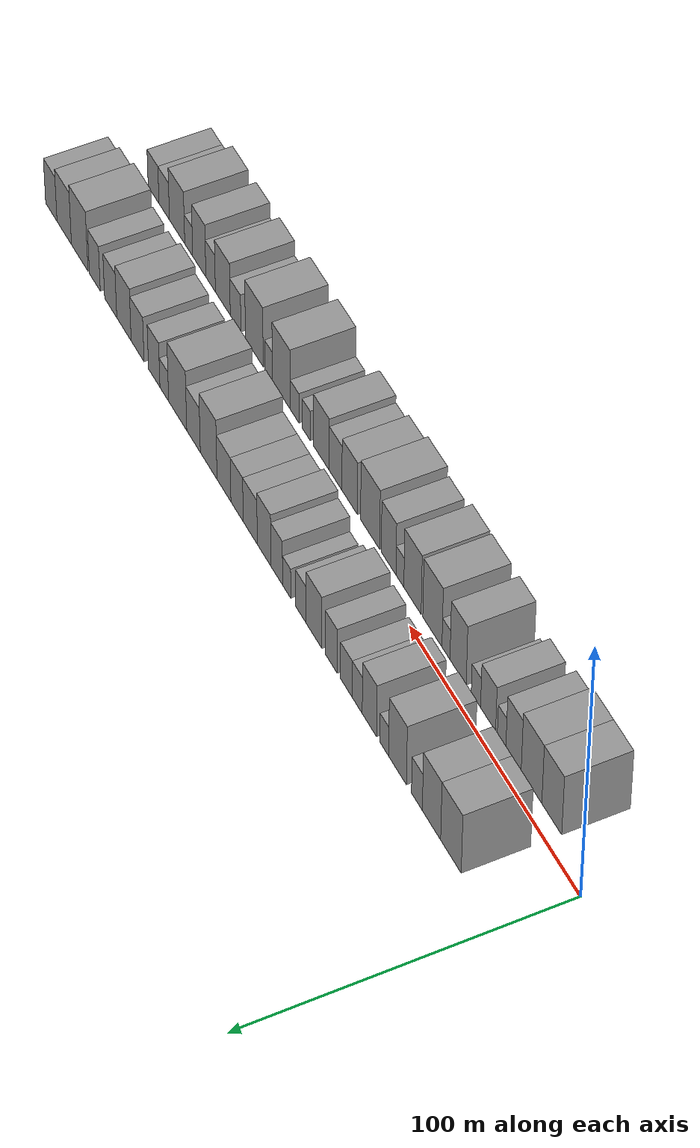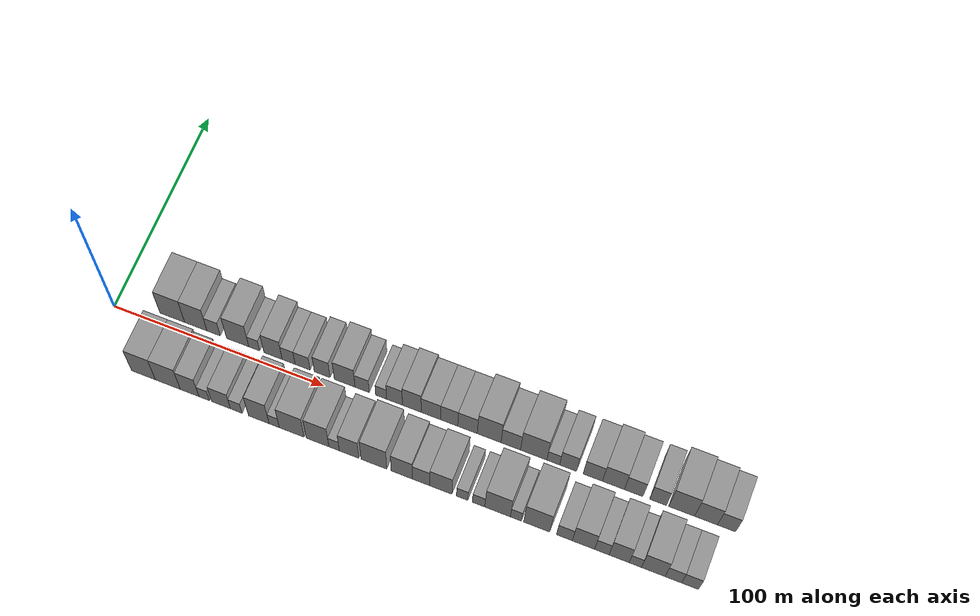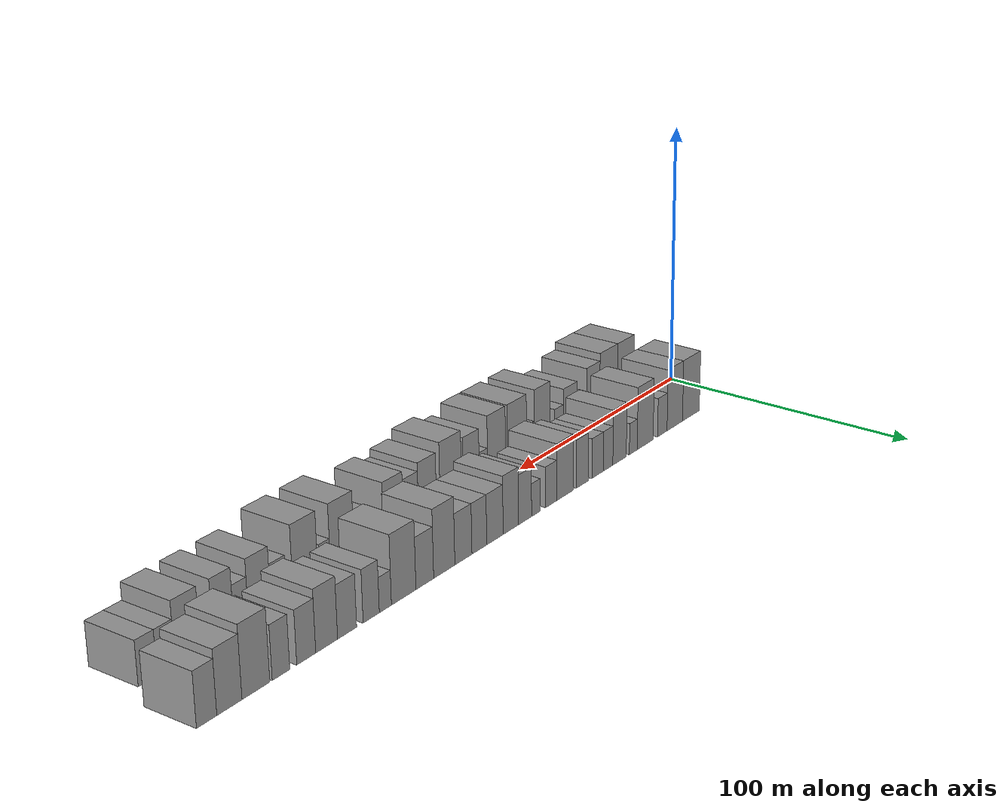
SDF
<sdf version="1.6">
 <world name="default">
  <scene>
   <sky><clouds><speed>12</speed></clouds></sky>
   <ambient>0.4 0.4 0.4 1</ambient>
   <background>0.7 0.7 0.7 1</background>
   <shadows>1</shadows>
  </scene>
  <gravity>0 0 -9.8066</gravity>
  <magnetic_field>6e-06 2.3e-05 -4.2e-05</magnetic_field>
  <physics default="0" name="default_physics" type="ode">
   <ode>
    <solver>
     <type>quick</type>
     <iters>10</iters>
     <sor>1.0</sor>
     <use_dynamic_moi_rescaling>0</use_dynamic_moi_rescaling>
    </solver>
    <constraints>
     <cfm>0</cfm>
     <erp>0.2</erp>
     <contact_max_correcting_vel>100</contact_max_correcting_vel>
     <contact_surface_layer>0.001</contact_surface_layer>
    </constraints>
   </ode>
   <max_step_size>0.004</max_step_size>
   <real_time_factor>1</real_time_factor>
   <real_time_update_rate>250</real_time_update_rate>
  </physics>
  <light name="sun" type="directional">
   <pose>0 0 10 0 0 0</pose>
   <diffuse>0.8 0.8 0.8 1</diffuse>
   <specular>0.2 0.2 0.2 1</specular>
   <attenuation>
    <range>1000</range>
    <constant>0.9</constant>
    <linear>0.01</linear>
    <quadratic>0.001</quadratic>
   </attenuation>
   <direction>-0.5 0.1 -0.9</direction>
  </light>
  <model name="building_1">
   <static>1</static>
   <pose>25.9721 14.5000 0 0.000000 0.000000 1.570796</pose>
   <link name="link">
    <pose>0 0 12.00 0 0 0</pose>
    <collision name="collision"><geometry><box><size>20.0000 11.9441 24.0000</size></box></geometry></collision>
    <visual name="visual">
     <cast_shadows>0</cast_shadows>
     <geometry><box><size>20.0000 11.9441 24.0000</size></box></geometry>
     <material>
      <script>
       <uri>model://grey_wall/materials/scripts</uri>
       <uri>model://grey_wall/materials/textures</uri>
       <name>vrc/grey_wall</name>
      </script>
     </material>
    </visual>
   </link>
  </model>
  <model name="building_2">
   <static>1</static>
   <pose>37.3020 14.5000 0 0.000000 0.000000 1.570796</pose>
   <link name="link">
    <pose>0 0 12.00 0 0 0</pose>
    <collision name="collision"><geometry><box><size>20.0000 10.7158 24.0000</size></box></geometry></collision>
    <visual name="visual">
     <cast_shadows>0</cast_shadows>
     <geometry><box><size>20.0000 10.7158 24.0000</size></box></geometry>
     <material>
      <script>
       <uri>model://grey_wall/materials/scripts</uri>
       <uri>model://grey_wall/materials/textures</uri>
       <name>vrc/grey_wall</name>
      </script>
     </material>
    </visual>
   </link>
  </model>
  <model name="building_3">
   <static>1</static>
   <pose>45.8694 14.5000 0 0.000000 0.000000 1.570796</pose>
   <link name="link">
    <pose>0 0 7.50 0 0 0</pose>
    <collision name="collision"><geometry><box><size>20.0000 6.4189 15.0000</size></box></geometry></collision>
    <visual name="visual">
     <cast_shadows>0</cast_shadows>
     <geometry><box><size>20.0000 6.4189 15.0000</size></box></geometry>
     <material>
      <script>
       <uri>model://grey_wall/materials/scripts</uri>
       <uri>model://grey_wall/materials/textures</uri>
       <name>vrc/grey_wall</name>
      </script>
     </material>
    </visual>
   </link>
  </model>
  <model name="building_4">
   <static>1</static>
   <pose>57.3771 14.5000 0 0.000000 0.000000 1.570796</pose>
   <link name="link">
    <pose>0 0 12.00 0 0 0</pose>
    <collision name="collision"><geometry><box><size>20.0000 10.5964 24.0000</size></box></geometry></collision>
    <visual name="visual">
     <cast_shadows>0</cast_shadows>
     <geometry><box><size>20.0000 10.5964 24.0000</size></box></geometry>
     <material>
      <script>
       <uri>model://grey_wall/materials/scripts</uri>
       <uri>model://grey_wall/materials/textures</uri>
       <name>vrc/grey_wall</name>
      </script>
     </material>
    </visual>
   </link>
  </model>
  <model name="building_5">
   <static>1</static>
   <pose>65.2735 14.5000 0 0.000000 0.000000 1.570796</pose>
   <link name="link">
    <pose>0 0 6.00 0 0 0</pose>
    <collision name="collision"><geometry><box><size>20.0000 5.1965 12.0000</size></box></geometry></collision>
    <visual name="visual">
     <cast_shadows>0</cast_shadows>
     <geometry><box><size>20.0000 5.1965 12.0000</size></box></geometry>
     <material>
      <script>
       <uri>model://grey_wall/materials/scripts</uri>
       <uri>model://grey_wall/materials/textures</uri>
       <name>vrc/grey_wall</name>
      </script>
     </material>
    </visual>
   </link>
  </model>
  <model name="building_6">
   <static>1</static>
   <pose>74.1986 14.5000 0 0.000000 0.000000 1.570796</pose>
   <link name="link">
    <pose>0 0 10.50 0 0 0</pose>
    <collision name="collision"><geometry><box><size>20.0000 8.6536 21.0000</size></box></geometry></collision>
    <visual name="visual">
     <cast_shadows>0</cast_shadows>
     <geometry><box><size>20.0000 8.6536 21.0000</size></box></geometry>
     <material>
      <script>
       <uri>model://grey_wall/materials/scripts</uri>
       <uri>model://grey_wall/materials/textures</uri>
       <name>vrc/grey_wall</name>
      </script>
     </material>
    </visual>
   </link>
  </model>
  <model name="building_7">
   <static>1</static>
   <pose>81.5979 14.5000 0 0.000000 0.000000 1.570796</pose>
   <link name="link">
    <pose>0 0 7.50 0 0 0</pose>
    <collision name="collision"><geometry><box><size>20.0000 6.1451 15.0000</size></box></geometry></collision>
    <visual name="visual">
     <cast_shadows>0</cast_shadows>
     <geometry><box><size>20.0000 6.1451 15.0000</size></box></geometry>
     <material>
      <script>
       <uri>model://grey_wall/materials/scripts</uri>
       <uri>model://grey_wall/materials/textures</uri>
       <name>vrc/grey_wall</name>
      </script>
     </material>
    </visual>
   </link>
  </model>
  <model name="building_8">
   <static>1</static>
   <pose>88.2021 14.5000 0 0.000000 0.000000 1.570796</pose>
   <link name="link">
    <pose>0 0 7.50 0 0 0</pose>
    <collision name="collision"><geometry><box><size>20.0000 7.0633 15.0000</size></box></geometry></collision>
    <visual name="visual">
     <cast_shadows>0</cast_shadows>
     <geometry><box><size>20.0000 7.0633 15.0000</size></box></geometry>
     <material>
      <script>
       <uri>model://grey_wall/materials/scripts</uri>
       <uri>model://grey_wall/materials/textures</uri>
       <name>vrc/grey_wall</name>
      </script>
     </material>
    </visual>
   </link>
  </model>
  <model name="building_9">
   <static>1</static>
   <pose>97.4439 14.5000 0 0.000000 0.000000 1.570796</pose>
   <link name="link">
    <pose>0 0 9.00 0 0 0</pose>
    <collision name="collision"><geometry><box><size>20.0000 7.4204 18.0000</size></box></geometry></collision>
    <visual name="visual">
     <cast_shadows>0</cast_shadows>
     <geometry><box><size>20.0000 7.4204 18.0000</size></box></geometry>
     <material>
      <script>
       <uri>model://grey_wall/materials/scripts</uri>
       <uri>model://grey_wall/materials/textures</uri>
       <name>vrc/grey_wall</name>
      </script>
     </material>
    </visual>
   </link>
  </model>
  <model name="building_10">
   <static>1</static>
   <pose>107.9999 14.5000 0 0.000000 0.000000 1.570796</pose>
   <link name="link">
    <pose>0 0 10.50 0 0 0</pose>
    <collision name="collision"><geometry><box><size>20.0000 9.6916 21.0000</size></box></geometry></collision>
    <visual name="visual">
     <cast_shadows>0</cast_shadows>
     <geometry><box><size>20.0000 9.6916 21.0000</size></box></geometry>
     <material>
      <script>
       <uri>model://grey_wall/materials/scripts</uri>
       <uri>model://grey_wall/materials/textures</uri>
       <name>vrc/grey_wall</name>
      </script>
     </material>
    </visual>
   </link>
  </model>
  <model name="building_11">
   <static>1</static>
   <pose>116.1699 14.5000 0 0.000000 0.000000 1.570796</pose>
   <link name="link">
    <pose>0 0 7.50 0 0 0</pose>
    <collision name="collision"><geometry><box><size>20.0000 6.6484 15.0000</size></box></geometry></collision>
    <visual name="visual">
     <cast_shadows>0</cast_shadows>
     <geometry><box><size>20.0000 6.6484 15.0000</size></box></geometry>
     <material>
      <script>
       <uri>model://grey_wall/materials/scripts</uri>
       <uri>model://grey_wall/materials/textures</uri>
       <name>vrc/grey_wall</name>
      </script>
     </material>
    </visual>
   </link>
  </model>
  <model name="building_12">
   <static>1</static>
   <pose>125.0549 14.5000 0 0.000000 0.000000 1.570796</pose>
   <link name="link">
    <pose>0 0 6.00 0 0 0</pose>
    <collision name="collision"><geometry><box><size>20.0000 5.1216 12.0000</size></box></geometry></collision>
    <visual name="visual">
     <cast_shadows>0</cast_shadows>
     <geometry><box><size>20.0000 5.1216 12.0000</size></box></geometry>
     <material>
      <script>
       <uri>model://grey_wall/materials/scripts</uri>
       <uri>model://grey_wall/materials/textures</uri>
       <name>vrc/grey_wall</name>
      </script>
     </material>
    </visual>
   </link>
  </model>
  <model name="building_13">
   <static>1</static>
   <pose>131.2912 14.5000 0 0.000000 0.000000 1.570796</pose>
   <link name="link">
    <pose>0 0 9.00 0 0 0</pose>
    <collision name="collision"><geometry><box><size>20.0000 7.3509 18.0000</size></box></geometry></collision>
    <visual name="visual">
     <cast_shadows>0</cast_shadows>
     <geometry><box><size>20.0000 7.3509 18.0000</size></box></geometry>
     <material>
      <script>
       <uri>model://grey_wall/materials/scripts</uri>
       <uri>model://grey_wall/materials/textures</uri>
       <name>vrc/grey_wall</name>
      </script>
     </material>
    </visual>
   </link>
  </model>
  <model name="building_14">
   <static>1</static>
   <pose>139.2761 14.5000 0 0.000000 0.000000 1.570796</pose>
   <link name="link">
    <pose>0 0 10.50 0 0 0</pose>
    <collision name="collision"><geometry><box><size>20.0000 8.6189 21.0000</size></box></geometry></collision>
    <visual name="visual">
     <cast_shadows>0</cast_shadows>
     <geometry><box><size>20.0000 8.6189 21.0000</size></box></geometry>
     <material>
      <script>
       <uri>model://grey_wall/materials/scripts</uri>
       <uri>model://grey_wall/materials/textures</uri>
       <name>vrc/grey_wall</name>
      </script>
     </material>
    </visual>
   </link>
  </model>
  <model name="building_15">
   <static>1</static>
   <pose>148.0838 14.5000 0 0.000000 0.000000 1.570796</pose>
   <link name="link">
    <pose>0 0 9.00 0 0 0</pose>
    <collision name="collision"><geometry><box><size>20.0000 8.9965 18.0000</size></box></geometry></collision>
    <visual name="visual">
     <cast_shadows>0</cast_shadows>
     <geometry><box><size>20.0000 8.9965 18.0000</size></box></geometry>
     <material>
      <script>
       <uri>model://grey_wall/materials/scripts</uri>
       <uri>model://grey_wall/materials/textures</uri>
       <name>vrc/grey_wall</name>
      </script>
     </material>
    </visual>
   </link>
  </model>
  <model name="building_16">
   <static>1</static>
   <pose>156.5489 14.5000 0 0.000000 0.000000 1.570796</pose>
   <link name="link">
    <pose>0 0 9.00 0 0 0</pose>
    <collision name="collision"><geometry><box><size>20.0000 7.9337 18.0000</size></box></geometry></collision>
    <visual name="visual">
     <cast_shadows>0</cast_shadows>
     <geometry><box><size>20.0000 7.9337 18.0000</size></box></geometry>
     <material>
      <script>
       <uri>model://grey_wall/materials/scripts</uri>
       <uri>model://grey_wall/materials/textures</uri>
       <name>vrc/grey_wall</name>
      </script>
     </material>
    </visual>
   </link>
  </model>
  <model name="building_17">
   <static>1</static>
   <pose>164.9982 14.5000 0 0.000000 0.000000 1.570796</pose>
   <link name="link">
    <pose>0 0 9.00 0 0 0</pose>
    <collision name="collision"><geometry><box><size>20.0000 8.9649 18.0000</size></box></geometry></collision>
    <visual name="visual">
     <cast_shadows>0</cast_shadows>
     <geometry><box><size>20.0000 8.9649 18.0000</size></box></geometry>
     <material>
      <script>
       <uri>model://grey_wall/materials/scripts</uri>
       <uri>model://grey_wall/materials/textures</uri>
       <name>vrc/grey_wall</name>
      </script>
     </material>
    </visual>
   </link>
  </model>
  <model name="building_18">
   <static>1</static>
   <pose>174.9205 14.5000 0 0.000000 0.000000 1.570796</pose>
   <link name="link">
    <pose>0 0 12.00 0 0 0</pose>
    <collision name="collision"><geometry><box><size>20.0000 10.8797 24.0000</size></box></geometry></collision>
    <visual name="visual">
     <cast_shadows>0</cast_shadows>
     <geometry><box><size>20.0000 10.8797 24.0000</size></box></geometry>
     <material>
      <script>
       <uri>model://grey_wall/materials/scripts</uri>
       <uri>model://grey_wall/materials/textures</uri>
       <name>vrc/grey_wall</name>
      </script>
     </material>
    </visual>
   </link>
  </model>
  <model name="building_19">
   <static>1</static>
   <pose>184.8079 14.5000 0 0.000000 0.000000 1.570796</pose>
   <link name="link">
    <pose>0 0 9.00 0 0 0</pose>
    <collision name="collision"><geometry><box><size>20.0000 8.8950 18.0000</size></box></geometry></collision>
    <visual name="visual">
     <cast_shadows>0</cast_shadows>
     <geometry><box><size>20.0000 8.8950 18.0000</size></box></geometry>
     <material>
      <script>
       <uri>model://grey_wall/materials/scripts</uri>
       <uri>model://grey_wall/materials/textures</uri>
       <name>vrc/grey_wall</name>
      </script>
     </material>
    </visual>
   </link>
  </model>
  <model name="building_20">
   <static>1</static>
   <pose>195.2455 14.5000 0 0.000000 0.000000 1.570796</pose>
   <link name="link">
    <pose>0 0 12.00 0 0 0</pose>
    <collision name="collision"><geometry><box><size>20.0000 11.9803 24.0000</size></box></geometry></collision>
    <visual name="visual">
     <cast_shadows>0</cast_shadows>
     <geometry><box><size>20.0000 11.9803 24.0000</size></box></geometry>
     <material>
      <script>
       <uri>model://grey_wall/materials/scripts</uri>
       <uri>model://grey_wall/materials/textures</uri>
       <name>vrc/grey_wall</name>
      </script>
     </material>
    </visual>
   </link>
  </model>
  <model name="building_21">
   <static>1</static>
   <pose>204.1334 14.5000 0 0.000000 0.000000 1.570796</pose>
   <link name="link">
    <pose>0 0 6.00 0 0 0</pose>
    <collision name="collision"><geometry><box><size>20.0000 5.7955 12.0000</size></box></geometry></collision>
    <visual name="visual">
     <cast_shadows>0</cast_shadows>
     <geometry><box><size>20.0000 5.7955 12.0000</size></box></geometry>
     <material>
      <script>
       <uri>model://grey_wall/materials/scripts</uri>
       <uri>model://grey_wall/materials/textures</uri>
       <name>vrc/grey_wall</name>
      </script>
     </material>
    </visual>
   </link>
  </model>
  <model name="building_22">
   <static>1</static>
   <pose>210.8447 14.5000 0 0.000000 0.000000 1.570796</pose>
   <link name="link">
    <pose>0 0 9.00 0 0 0</pose>
    <collision name="collision"><geometry><box><size>20.0000 7.6272 18.0000</size></box></geometry></collision>
    <visual name="visual">
     <cast_shadows>0</cast_shadows>
     <geometry><box><size>20.0000 7.6272 18.0000</size></box></geometry>
     <material>
      <script>
       <uri>model://grey_wall/materials/scripts</uri>
       <uri>model://grey_wall/materials/textures</uri>
       <name>vrc/grey_wall</name>
      </script>
     </material>
    </visual>
   </link>
  </model>
  <model name="building_23">
   <static>1</static>
   <pose>222.0155 14.5000 0 0.000000 0.000000 1.570796</pose>
   <link name="link">
    <pose>0 0 9.00 0 0 0</pose>
    <collision name="collision"><geometry><box><size>20.0000 8.7144 18.0000</size></box></geometry></collision>
    <visual name="visual">
     <cast_shadows>0</cast_shadows>
     <geometry><box><size>20.0000 8.7144 18.0000</size></box></geometry>
     <material>
      <script>
       <uri>model://grey_wall/materials/scripts</uri>
       <uri>model://grey_wall/materials/textures</uri>
       <name>vrc/grey_wall</name>
      </script>
     </material>
    </visual>
   </link>
  </model>
  <model name="building_24">
   <static>1</static>
   <pose>231.2629 14.5000 0 0.000000 0.000000 1.570796</pose>
   <link name="link">
    <pose>0 0 10.50 0 0 0</pose>
    <collision name="collision"><geometry><box><size>20.0000 9.7805 21.0000</size></box></geometry></collision>
    <visual name="visual">
     <cast_shadows>0</cast_shadows>
     <geometry><box><size>20.0000 9.7805 21.0000</size></box></geometry>
     <material>
      <script>
       <uri>model://grey_wall/materials/scripts</uri>
       <uri>model://grey_wall/materials/textures</uri>
       <name>vrc/grey_wall</name>
      </script>
     </material>
    </visual>
   </link>
  </model>
  <model name="building_25">
   <static>1</static>
   <pose>240.3003 14.5000 0 0.000000 0.000000 1.570796</pose>
   <link name="link">
    <pose>0 0 9.00 0 0 0</pose>
    <collision name="collision"><geometry><box><size>20.0000 8.2943 18.0000</size></box></geometry></collision>
    <visual name="visual">
     <cast_shadows>0</cast_shadows>
     <geometry><box><size>20.0000 8.2943 18.0000</size></box></geometry>
     <material>
      <script>
       <uri>model://grey_wall/materials/scripts</uri>
       <uri>model://grey_wall/materials/textures</uri>
       <name>vrc/grey_wall</name>
      </script>
     </material>
    </visual>
   </link>
  </model>
  <model name="building_26">
   <static>1</static>
   <pose>251.1768 14.5000 0 0.000000 0.000000 1.570796</pose>
   <link name="link">
    <pose>0 0 9.00 0 0 0</pose>
    <collision name="collision"><geometry><box><size>20.0000 7.4587 18.0000</size></box></geometry></collision>
    <visual name="visual">
     <cast_shadows>0</cast_shadows>
     <geometry><box><size>20.0000 7.4587 18.0000</size></box></geometry>
     <material>
      <script>
       <uri>model://grey_wall/materials/scripts</uri>
       <uri>model://grey_wall/materials/textures</uri>
       <name>vrc/grey_wall</name>
      </script>
     </material>
    </visual>
   </link>
  </model>
  <model name="building_27">
   <static>1</static>
   <pose>261.6491 14.5000 0 0.000000 0.000000 1.570796</pose>
   <link name="link">
    <pose>0 0 12.00 0 0 0</pose>
    <collision name="collision"><geometry><box><size>20.0000 11.4858 24.0000</size></box></geometry></collision>
    <visual name="visual">
     <cast_shadows>0</cast_shadows>
     <geometry><box><size>20.0000 11.4858 24.0000</size></box></geometry>
     <material>
      <script>
       <uri>model://grey_wall/materials/scripts</uri>
       <uri>model://grey_wall/materials/textures</uri>
       <name>vrc/grey_wall</name>
      </script>
     </material>
    </visual>
   </link>
  </model>
  <model name="building_28">
   <static>1</static>
   <pose>272.4501 14.5000 0 0.000000 0.000000 1.570796</pose>
   <link name="link">
    <pose>0 0 10.50 0 0 0</pose>
    <collision name="collision"><geometry><box><size>20.0000 10.1163 21.0000</size></box></geometry></collision>
    <visual name="visual">
     <cast_shadows>0</cast_shadows>
     <geometry><box><size>20.0000 10.1163 21.0000</size></box></geometry>
     <material>
      <script>
       <uri>model://grey_wall/materials/scripts</uri>
       <uri>model://grey_wall/materials/textures</uri>
       <name>vrc/grey_wall</name>
      </script>
     </material>
    </visual>
   </link>
  </model>
  <model name="building_29">
   <static>1</static>
   <pose>281.5055 14.5000 0 0.000000 0.000000 1.570796</pose>
   <link name="link">
    <pose>0 0 9.00 0 0 0</pose>
    <collision name="collision"><geometry><box><size>20.0000 7.9945 18.0000</size></box></geometry></collision>
    <visual name="visual">
     <cast_shadows>0</cast_shadows>
     <geometry><box><size>20.0000 7.9945 18.0000</size></box></geometry>
     <material>
      <script>
       <uri>model://grey_wall/materials/scripts</uri>
       <uri>model://grey_wall/materials/textures</uri>
       <name>vrc/grey_wall</name>
      </script>
     </material>
    </visual>
   </link>
  </model>
  <model name="building_30">
   <static>1</static>
   <pose>25.6833 -14.5000 0 0.000000 0.000000 1.570796</pose>
   <link name="link">
    <pose>0 0 12.00 0 0 0</pose>
    <collision name="collision"><geometry><box><size>20.0000 11.3666 24.0000</size></box></geometry></collision>
    <visual name="visual">
     <cast_shadows>0</cast_shadows>
     <geometry><box><size>20.0000 11.3666 24.0000</size></box></geometry>
     <material>
      <script>
       <uri>model://grey_wall/materials/scripts</uri>
       <uri>model://grey_wall/materials/textures</uri>
       <name>vrc/grey_wall</name>
      </script>
     </material>
    </visual>
   </link>
  </model>
  <model name="building_31">
   <static>1</static>
   <pose>37.2959 -14.5000 0 0.000000 0.000000 1.570796</pose>
   <link name="link">
    <pose>0 0 12.00 0 0 0</pose>
    <collision name="collision"><geometry><box><size>20.0000 11.8586 24.0000</size></box></geometry></collision>
    <visual name="visual">
     <cast_shadows>0</cast_shadows>
     <geometry><box><size>20.0000 11.8586 24.0000</size></box></geometry>
     <material>
      <script>
       <uri>model://grey_wall/materials/scripts</uri>
       <uri>model://grey_wall/materials/textures</uri>
       <name>vrc/grey_wall</name>
      </script>
     </material>
    </visual>
   </link>
  </model>
  <model name="building_32">
   <static>1</static>
   <pose>47.6579 -14.5000 0 0.000000 0.000000 1.570796</pose>
   <link name="link">
    <pose>0 0 10.50 0 0 0</pose>
    <collision name="collision"><geometry><box><size>20.0000 8.8653 21.0000</size></box></geometry></collision>
    <visual name="visual">
     <cast_shadows>0</cast_shadows>
     <geometry><box><size>20.0000 8.8653 21.0000</size></box></geometry>
     <material>
      <script>
       <uri>model://grey_wall/materials/scripts</uri>
       <uri>model://grey_wall/materials/textures</uri>
       <name>vrc/grey_wall</name>
      </script>
     </material>
    </visual>
   </link>
  </model>
  <model name="building_33">
   <static>1</static>
   <pose>54.5802 -14.5000 0 0.000000 0.000000 1.570796</pose>
   <link name="link">
    <pose>0 0 6.00 0 0 0</pose>
    <collision name="collision"><geometry><box><size>20.0000 4.9793 12.0000</size></box></geometry></collision>
    <visual name="visual">
     <cast_shadows>0</cast_shadows>
     <geometry><box><size>20.0000 4.9793 12.0000</size></box></geometry>
     <material>
      <script>
       <uri>model://grey_wall/materials/scripts</uri>
       <uri>model://grey_wall/materials/textures</uri>
       <name>vrc/grey_wall</name>
      </script>
     </material>
    </visual>
   </link>
  </model>
  <model name="building_34">
   <static>1</static>
   <pose>62.4962 -14.5000 0 0.000000 0.000000 1.570796</pose>
   <link name="link">
    <pose>0 0 9.00 0 0 0</pose>
    <collision name="collision"><geometry><box><size>20.0000 8.8528 18.0000</size></box></geometry></collision>
    <visual name="visual">
     <cast_shadows>0</cast_shadows>
     <geometry><box><size>20.0000 8.8528 18.0000</size></box></geometry>
     <material>
      <script>
       <uri>model://grey_wall/materials/scripts</uri>
       <uri>model://grey_wall/materials/textures</uri>
       <name>vrc/grey_wall</name>
      </script>
     </material>
    </visual>
   </link>
  </model>
  <model name="building_35">
   <static>1</static>
   <pose>69.6686 -14.5000 0 0.000000 0.000000 1.570796</pose>
   <link name="link">
    <pose>0 0 6.00 0 0 0</pose>
    <collision name="collision"><geometry><box><size>20.0000 5.4920 12.0000</size></box></geometry></collision>
    <visual name="visual">
     <cast_shadows>0</cast_shadows>
     <geometry><box><size>20.0000 5.4920 12.0000</size></box></geometry>
     <material>
      <script>
       <uri>model://grey_wall/materials/scripts</uri>
       <uri>model://grey_wall/materials/textures</uri>
       <name>vrc/grey_wall</name>
      </script>
     </material>
    </visual>
   </link>
  </model>
  <model name="building_36">
   <static>1</static>
   <pose>80.2390 -14.5000 0 0.000000 0.000000 1.570796</pose>
   <link name="link">
    <pose>0 0 12.00 0 0 0</pose>
    <collision name="collision"><geometry><box><size>20.0000 9.6488 24.0000</size></box></geometry></collision>
    <visual name="visual">
     <cast_shadows>0</cast_shadows>
     <geometry><box><size>20.0000 9.6488 24.0000</size></box></geometry>
     <material>
      <script>
       <uri>model://grey_wall/materials/scripts</uri>
       <uri>model://grey_wall/materials/textures</uri>
       <name>vrc/grey_wall</name>
      </script>
     </material>
    </visual>
   </link>
  </model>
  <model name="building_37">
   <static>1</static>
   <pose>87.4652 -14.5000 0 0.000000 0.000000 1.570796</pose>
   <link name="link">
    <pose>0 0 6.00 0 0 0</pose>
    <collision name="collision"><geometry><box><size>20.0000 4.8037 12.0000</size></box></geometry></collision>
    <visual name="visual">
     <cast_shadows>0</cast_shadows>
     <geometry><box><size>20.0000 4.8037 12.0000</size></box></geometry>
     <material>
      <script>
       <uri>model://grey_wall/materials/scripts</uri>
       <uri>model://grey_wall/materials/textures</uri>
       <name>vrc/grey_wall</name>
      </script>
     </material>
    </visual>
   </link>
  </model>
  <model name="building_38">
   <static>1</static>
   <pose>95.6413 -14.5000 0 0.000000 0.000000 1.570796</pose>
   <link name="link">
    <pose>0 0 12.00 0 0 0</pose>
    <collision name="collision"><geometry><box><size>20.0000 11.5485 24.0000</size></box></geometry></collision>
    <visual name="visual">
     <cast_shadows>0</cast_shadows>
     <geometry><box><size>20.0000 11.5485 24.0000</size></box></geometry>
     <material>
      <script>
       <uri>model://grey_wall/materials/scripts</uri>
       <uri>model://grey_wall/materials/textures</uri>
       <name>vrc/grey_wall</name>
      </script>
     </material>
    </visual>
   </link>
  </model>
  <model name="building_39">
   <static>1</static>
   <pose>107.6592 -14.5000 0 0.000000 0.000000 1.570796</pose>
   <link name="link">
    <pose>0 0 12.00 0 0 0</pose>
    <collision name="collision"><geometry><box><size>20.0000 10.4875 24.0000</size></box></geometry></collision>
    <visual name="visual">
     <cast_shadows>0</cast_shadows>
     <geometry><box><size>20.0000 10.4875 24.0000</size></box></geometry>
     <material>
      <script>
       <uri>model://grey_wall/materials/scripts</uri>
       <uri>model://grey_wall/materials/textures</uri>
       <name>vrc/grey_wall</name>
      </script>
     </material>
    </visual>
   </link>
  </model>
  <model name="building_40">
   <static>1</static>
   <pose>115.3167 -14.5000 0 0.000000 0.000000 1.570796</pose>
   <link name="link">
    <pose>0 0 6.00 0 0 0</pose>
    <collision name="collision"><geometry><box><size>20.0000 4.8275 12.0000</size></box></geometry></collision>
    <visual name="visual">
     <cast_shadows>0</cast_shadows>
     <geometry><box><size>20.0000 4.8275 12.0000</size></box></geometry>
     <material>
      <script>
       <uri>model://grey_wall/materials/scripts</uri>
       <uri>model://grey_wall/materials/textures</uri>
       <name>vrc/grey_wall</name>
      </script>
     </material>
    </visual>
   </link>
  </model>
  <model name="building_41">
   <static>1</static>
   <pose>122.2392 -14.5000 0 0.000000 0.000000 1.570796</pose>
   <link name="link">
    <pose>0 0 10.50 0 0 0</pose>
    <collision name="collision"><geometry><box><size>20.0000 9.0175 21.0000</size></box></geometry></collision>
    <visual name="visual">
     <cast_shadows>0</cast_shadows>
     <geometry><box><size>20.0000 9.0175 21.0000</size></box></geometry>
     <material>
      <script>
       <uri>model://grey_wall/materials/scripts</uri>
       <uri>model://grey_wall/materials/textures</uri>
       <name>vrc/grey_wall</name>
      </script>
     </material>
    </visual>
   </link>
  </model>
  <model name="building_42">
   <static>1</static>
   <pose>133.6652 -14.5000 0 0.000000 0.000000 1.570796</pose>
   <link name="link">
    <pose>0 0 12.00 0 0 0</pose>
    <collision name="collision"><geometry><box><size>20.0000 11.8345 24.0000</size></box></geometry></collision>
    <visual name="visual">
     <cast_shadows>0</cast_shadows>
     <geometry><box><size>20.0000 11.8345 24.0000</size></box></geometry>
     <material>
      <script>
       <uri>model://grey_wall/materials/scripts</uri>
       <uri>model://grey_wall/materials/textures</uri>
       <name>vrc/grey_wall</name>
      </script>
     </material>
    </visual>
   </link>
  </model>
  <model name="building_43">
   <static>1</static>
   <pose>146.3983 -14.5000 0 0.000000 0.000000 1.570796</pose>
   <link name="link">
    <pose>0 0 10.50 0 0 0</pose>
    <collision name="collision"><geometry><box><size>20.0000 9.6317 21.0000</size></box></geometry></collision>
    <visual name="visual">
     <cast_shadows>0</cast_shadows>
     <geometry><box><size>20.0000 9.6317 21.0000</size></box></geometry>
     <material>
      <script>
       <uri>model://grey_wall/materials/scripts</uri>
       <uri>model://grey_wall/materials/textures</uri>
       <name>vrc/grey_wall</name>
      </script>
     </material>
    </visual>
   </link>
  </model>
  <model name="building_44">
   <static>1</static>
   <pose>155.1992 -14.5000 0 0.000000 0.000000 1.570796</pose>
   <link name="link">
    <pose>0 0 9.00 0 0 0</pose>
    <collision name="collision"><geometry><box><size>20.0000 7.9702 18.0000</size></box></geometry></collision>
    <visual name="visual">
     <cast_shadows>0</cast_shadows>
     <geometry><box><size>20.0000 7.9702 18.0000</size></box></geometry>
     <material>
      <script>
       <uri>model://grey_wall/materials/scripts</uri>
       <uri>model://grey_wall/materials/textures</uri>
       <name>vrc/grey_wall</name>
      </script>
     </material>
    </visual>
   </link>
  </model>
  <model name="building_45">
   <static>1</static>
   <pose>164.2384 -14.5000 0 0.000000 0.000000 1.570796</pose>
   <link name="link">
    <pose>0 0 10.50 0 0 0</pose>
    <collision name="collision"><geometry><box><size>20.0000 10.1082 21.0000</size></box></geometry></collision>
    <visual name="visual">
     <cast_shadows>0</cast_shadows>
     <geometry><box><size>20.0000 10.1082 21.0000</size></box></geometry>
     <material>
      <script>
       <uri>model://grey_wall/materials/scripts</uri>
       <uri>model://grey_wall/materials/textures</uri>
       <name>vrc/grey_wall</name>
      </script>
     </material>
    </visual>
   </link>
  </model>
  <model name="building_46">
   <static>1</static>
   <pose>173.8898 -14.5000 0 0.000000 0.000000 1.570796</pose>
   <link name="link">
    <pose>0 0 6.00 0 0 0</pose>
    <collision name="collision"><geometry><box><size>20.0000 5.1945 12.0000</size></box></geometry></collision>
    <visual name="visual">
     <cast_shadows>0</cast_shadows>
     <geometry><box><size>20.0000 5.1945 12.0000</size></box></geometry>
     <material>
      <script>
       <uri>model://grey_wall/materials/scripts</uri>
       <uri>model://grey_wall/materials/textures</uri>
       <name>vrc/grey_wall</name>
      </script>
     </material>
    </visual>
   </link>
  </model>
  <model name="building_47">
   <static>1</static>
   <pose>181.3104 -14.5000 0 0.000000 0.000000 1.570796</pose>
   <link name="link">
    <pose>0 0 6.00 0 0 0</pose>
    <collision name="collision"><geometry><box><size>20.0000 5.6467 12.0000</size></box></geometry></collision>
    <visual name="visual">
     <cast_shadows>0</cast_shadows>
     <geometry><box><size>20.0000 5.6467 12.0000</size></box></geometry>
     <material>
      <script>
       <uri>model://grey_wall/materials/scripts</uri>
       <uri>model://grey_wall/materials/textures</uri>
       <name>vrc/grey_wall</name>
      </script>
     </material>
    </visual>
   </link>
  </model>
  <model name="building_48">
   <static>1</static>
   <pose>189.8992 -14.5000 0 0.000000 0.000000 1.570796</pose>
   <link name="link">
    <pose>0 0 12.00 0 0 0</pose>
    <collision name="collision"><geometry><box><size>20.0000 11.5308 24.0000</size></box></geometry></collision>
    <visual name="visual">
     <cast_shadows>0</cast_shadows>
     <geometry><box><size>20.0000 11.5308 24.0000</size></box></geometry>
     <material>
      <script>
       <uri>model://grey_wall/materials/scripts</uri>
       <uri>model://grey_wall/materials/textures</uri>
       <name>vrc/grey_wall</name>
      </script>
     </material>
    </visual>
   </link>
  </model>
  <model name="building_49">
   <static>1</static>
   <pose>198.1417 -14.5000 0 0.000000 0.000000 1.570796</pose>
   <link name="link">
    <pose>0 0 6.00 0 0 0</pose>
    <collision name="collision"><geometry><box><size>20.0000 4.9543 12.0000</size></box></geometry></collision>
    <visual name="visual">
     <cast_shadows>0</cast_shadows>
     <geometry><box><size>20.0000 4.9543 12.0000</size></box></geometry>
     <material>
      <script>
       <uri>model://grey_wall/materials/scripts</uri>
       <uri>model://grey_wall/materials/textures</uri>
       <name>vrc/grey_wall</name>
      </script>
     </material>
    </visual>
   </link>
  </model>
  <model name="building_50">
   <static>1</static>
   <pose>207.4481 -14.5000 0 0.000000 0.000000 1.570796</pose>
   <link name="link">
    <pose>0 0 12.00 0 0 0</pose>
    <collision name="collision"><geometry><box><size>20.0000 11.6585 24.0000</size></box></geometry></collision>
    <visual name="visual">
     <cast_shadows>0</cast_shadows>
     <geometry><box><size>20.0000 11.6585 24.0000</size></box></geometry>
     <material>
      <script>
       <uri>model://grey_wall/materials/scripts</uri>
       <uri>model://grey_wall/materials/textures</uri>
       <name>vrc/grey_wall</name>
      </script>
     </material>
    </visual>
   </link>
  </model>
  <model name="building_51">
   <static>1</static>
   <pose>219.8148 -14.5000 0 0.000000 0.000000 1.570796</pose>
   <link name="link">
    <pose>0 0 7.50 0 0 0</pose>
    <collision name="collision"><geometry><box><size>20.0000 7.0749 15.0000</size></box></geometry></collision>
    <visual name="visual">
     <cast_shadows>0</cast_shadows>
     <geometry><box><size>20.0000 7.0749 15.0000</size></box></geometry>
     <material>
      <script>
       <uri>model://grey_wall/materials/scripts</uri>
       <uri>model://grey_wall/materials/textures</uri>
       <name>vrc/grey_wall</name>
      </script>
     </material>
    </visual>
   </link>
  </model>
  <model name="building_52">
   <static>1</static>
   <pose>228.2957 -14.5000 0 0.000000 0.000000 1.570796</pose>
   <link name="link">
    <pose>0 0 10.50 0 0 0</pose>
    <collision name="collision"><geometry><box><size>20.0000 9.8869 21.0000</size></box></geometry></collision>
    <visual name="visual">
     <cast_shadows>0</cast_shadows>
     <geometry><box><size>20.0000 9.8869 21.0000</size></box></geometry>
     <material>
      <script>
       <uri>model://grey_wall/materials/scripts</uri>
       <uri>model://grey_wall/materials/textures</uri>
       <name>vrc/grey_wall</name>
      </script>
     </material>
    </visual>
   </link>
  </model>
  <model name="building_53">
   <static>1</static>
   <pose>236.4265 -14.5000 0 0.000000 0.000000 1.570796</pose>
   <link name="link">
    <pose>0 0 7.50 0 0 0</pose>
    <collision name="collision"><geometry><box><size>20.0000 6.3746 15.0000</size></box></geometry></collision>
    <visual name="visual">
     <cast_shadows>0</cast_shadows>
     <geometry><box><size>20.0000 6.3746 15.0000</size></box></geometry>
     <material>
      <script>
       <uri>model://grey_wall/materials/scripts</uri>
       <uri>model://grey_wall/materials/textures</uri>
       <name>vrc/grey_wall</name>
      </script>
     </material>
    </visual>
   </link>
  </model>
  <model name="building_54">
   <static>1</static>
   <pose>244.0509 -14.5000 0 0.000000 0.000000 1.570796</pose>
   <link name="link">
    <pose>0 0 10.50 0 0 0</pose>
    <collision name="collision"><geometry><box><size>20.0000 8.8743 21.0000</size></box></geometry></collision>
    <visual name="visual">
     <cast_shadows>0</cast_shadows>
     <geometry><box><size>20.0000 8.8743 21.0000</size></box></geometry>
     <material>
      <script>
       <uri>model://grey_wall/materials/scripts</uri>
       <uri>model://grey_wall/materials/textures</uri>
       <name>vrc/grey_wall</name>
      </script>
     </material>
    </visual>
   </link>
  </model>
  <model name="building_55">
   <static>1</static>
   <pose>251.1742 -14.5000 0 0.000000 0.000000 1.570796</pose>
   <link name="link">
    <pose>0 0 6.00 0 0 0</pose>
    <collision name="collision"><geometry><box><size>20.0000 5.3723 12.0000</size></box></geometry></collision>
    <visual name="visual">
     <cast_shadows>0</cast_shadows>
     <geometry><box><size>20.0000 5.3723 12.0000</size></box></geometry>
     <material>
      <script>
       <uri>model://grey_wall/materials/scripts</uri>
       <uri>model://grey_wall/materials/textures</uri>
       <name>vrc/grey_wall</name>
      </script>
     </material>
    </visual>
   </link>
  </model>
  <model name="building_56">
   <static>1</static>
   <pose>259.0595 -14.5000 0 0.000000 0.000000 1.570796</pose>
   <link name="link">
    <pose>0 0 10.50 0 0 0</pose>
    <collision name="collision"><geometry><box><size>20.0000 10.3983 21.0000</size></box></geometry></collision>
    <visual name="visual">
     <cast_shadows>0</cast_shadows>
     <geometry><box><size>20.0000 10.3983 21.0000</size></box></geometry>
     <material>
      <script>
       <uri>model://grey_wall/materials/scripts</uri>
       <uri>model://grey_wall/materials/textures</uri>
       <name>vrc/grey_wall</name>
      </script>
     </material>
    </visual>
   </link>
  </model>
  <model name="building_57">
   <static>1</static>
   <pose>267.8588 -14.5000 0 0.000000 0.000000 1.570796</pose>
   <link name="link">
    <pose>0 0 7.50 0 0 0</pose>
    <collision name="collision"><geometry><box><size>20.0000 7.2004 15.0000</size></box></geometry></collision>
    <visual name="visual">
     <cast_shadows>0</cast_shadows>
     <geometry><box><size>20.0000 7.2004 15.0000</size></box></geometry>
     <material>
      <script>
       <uri>model://grey_wall/materials/scripts</uri>
       <uri>model://grey_wall/materials/textures</uri>
       <name>vrc/grey_wall</name>
      </script>
     </material>
    </visual>
   </link>
  </model>
  <model name="building_58">
   <static>1</static>
   <pose>275.1738 -14.5000 0 0.000000 0.000000 1.570796</pose>
   <link name="link">
    <pose>0 0 7.50 0 0 0</pose>
    <collision name="collision"><geometry><box><size>20.0000 7.4295 15.0000</size></box></geometry></collision>
    <visual name="visual">
     <cast_shadows>0</cast_shadows>
     <geometry><box><size>20.0000 7.4295 15.0000</size></box></geometry>
     <material>
      <script>
       <uri>model://grey_wall/materials/scripts</uri>
       <uri>model://grey_wall/materials/textures</uri>
       <name>vrc/grey_wall</name>
      </script>
     </material>
    </visual>
   </link>
  </model>
 </world>
</sdf>
